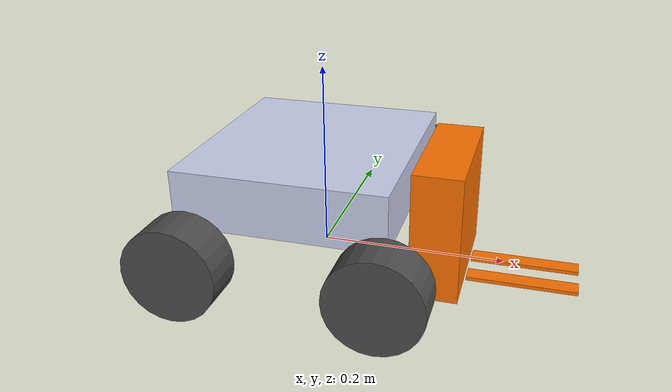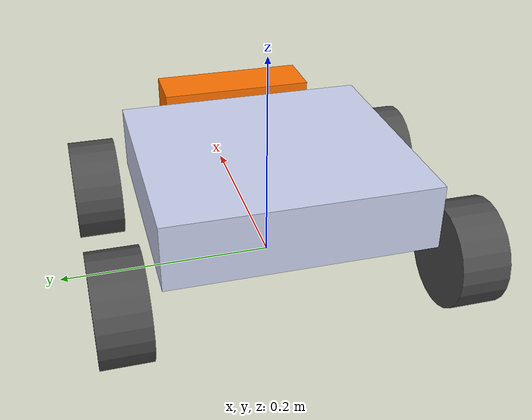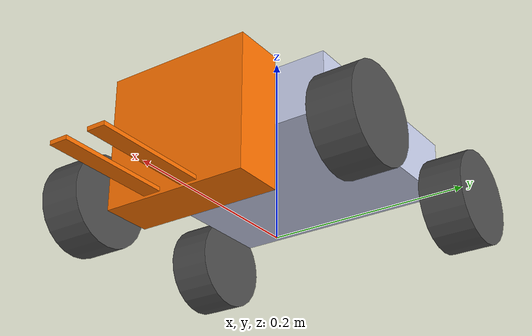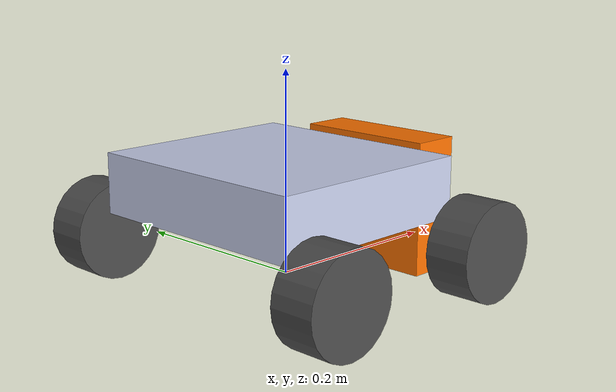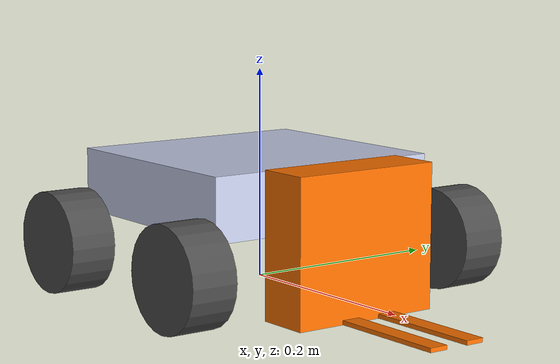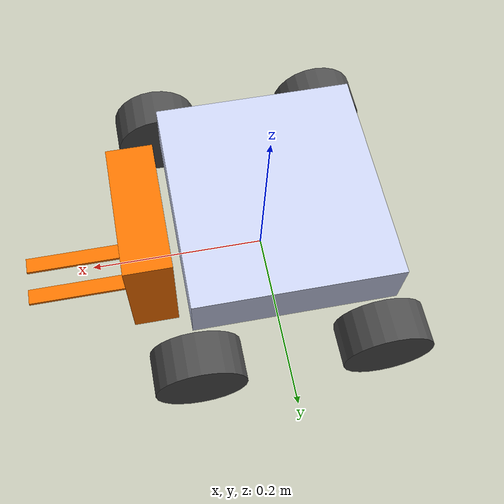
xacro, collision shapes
<?xml version="1.0" encoding="utf-8"?>
<robot name="robot0" xmlns:xacro="http://www.ros.org/wiki/xacro">

  <!-- Robot0 Top-Level Xacro Description         -->

  <!-- Common Properties, Constants & Materials -->
  <xacro:include filename="$(find robot0_description)/urdf/common_properties.xacro" />

  <!-- Base Footprint & Base Link Chassis -->
  <xacro:include filename="$(find robot0_description)/urdf/chassis.xacro" />

  <!-- Mecanum Wheels (Macro & 4 Wheels) -->
  <xacro:include filename="$(find robot0_description)/urdf/wheel.xacro" />

  <!-- Lift Arm Mechanism -->
  <xacro:include filename="$(find robot0_description)/urdf/lift.xacro" />

  <!-- Camera Sensor -->
  <xacro:include filename="$(find robot0_description)/urdf/camera.xacro" />

  <!-- Gazebo Fortress Simulation Plugins -->
  <xacro:include filename="$(find robot0_description)/urdf/robot0.gazebo.xacro" />

</robot>

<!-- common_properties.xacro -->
<robot xmlns:xacro="http://www.ros.org/wiki/xacro">

  <!-- Mathematical Constants                     -->
  <xacro:property name="PI" value="3.1415926535897931" />
  <xacro:property name="DEG_TO_RAD" value="${PI / 180.0}" />

  <!-- Standard Materials (RViz Visual Colors)    -->
  <material name="silver">
    <color rgba="0.792 0.820 0.933 1.0" />
  </material>

  <material name="dark_grey">
    <color rgba="0.2 0.2 0.2 1.0" />
  </material>

  <material name="wheel_grey">
    <color rgba="0.3 0.3 0.3 1.0" />
  </material>

  <material name="orange">
    <color rgba="1.0 0.45 0.0 1.0" />
  </material>

  <!-- Robot0 Geometric & Kinematic Properties    -->
  <!-- Wheelbase (Front-to-Rear) = 0.200m -> lx = 0.100m -->
  <xacro:property name="wheelbase_lx" value="0.100" />
  <!-- Track Width (Left-to-Right) = 0.3078m -> ly = 0.1539m -->
  <xacro:property name="track_ly" value="0.1539" />
  <xacro:property name="wheel_z_offset" value="-0.02385" />

  <!-- Wheel Common Properties                    -->
  <xacro:property name="wheel_radius" value="0.0487" />
  <xacro:property name="wheel_length" value="0.045" />
  <xacro:property name="wheel_mass" value="0.13187" />
  <xacro:property name="wheel_effort_limit" value="10.0" />
  <xacro:property name="wheel_velocity_limit" value="20.0" />

  <!-- Lift Mechanism Kinematics -->
  <xacro:property name="lift_joint_x" value="0.128" />
  <xacro:property name="lift_joint_y" value="0.000" />
  <xacro:property name="lift_joint_z" value="0.0435" />

  <!-- Camera Sensor Kinematics -->
  <xacro:property name="camera_joint_x" value="0.1695" />
  <xacro:property name="camera_joint_y" value="0.000" />
  <xacro:property name="camera_joint_z" value="0.272" />
  <xacro:property name="camera_pitch" value="0.70" />

</robot>

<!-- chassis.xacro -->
<robot xmlns:xacro="http://www.ros.org/wiki/xacro">

  <!-- Base Links & Footprint (ROS Standard REP-103) -->
  <link name="base_footprint" />

  <joint name="base_footprint_joint" type="fixed">
    <origin xyz="0 0 0.06" rpy="0 0 0" />
    <parent link="base_footprint" />
    <child link="base_link" />
  </joint>

  <link name="base_link">
    <inertial>
      <origin xyz="-0.00965 0.00000 0.01496" rpy="0 0 0" />
      <mass value="1.85" />
      <inertia ixx="0.010" ixy="0" ixz="0" iyy="0.005" iyz="0" izz="0.012" />
    </inertial>

    <!-- Main Chassis Base (Offset CAD origin to center base_link at 0,0,0) -->
    <visual>
      <origin xyz="-0.00928 0.00827 0.0" rpy="0 0 0" />
      <geometry>
        <mesh filename="package://robot0_description/meshes/base_link.stl" />
      </geometry>
      <material name="silver" />
    </visual>
    <!-- Collision Box sized to prevent overlap with front lift carriage -->
    <collision>
      <origin xyz="-0.010 0.000 0.030" rpy="0 0 0" />
      <geometry>
        <box size="0.22 0.24 0.06" />
      </geometry>
    </collision>

    <!-- Front-Right Motor Bracket -->
    <visual>
      <origin xyz="0.120 -0.123 -0.00377" rpy="-${PI/2} 0 ${PI/2}" />
      <geometry>
        <mesh filename="package://robot0_description/meshes/motor_bracket_fr.stl" />
      </geometry>
      <material name="silver" />
    </visual>

    <!-- Front-Left Motor Bracket -->
    <visual>
      <origin xyz="0.080 0.123 -0.00377" rpy="-${PI/2} 0 -${PI/2}" />
      <geometry>
        <mesh filename="package://robot0_description/meshes/motor_bracket_fl.stl" />
      </geometry>
      <material name="silver" />
    </visual>

    <!-- Rear-Right Motor Bracket -->
    <visual>
      <origin xyz="-0.080 -0.123 -0.00377" rpy="-${PI/2} 0 ${PI/2}" />
      <geometry>
        <mesh filename="package://robot0_description/meshes/motor_bracket_rr.stl" />
      </geometry>
      <material name="silver" />
    </visual>

    <!-- Rear-Left Motor Bracket -->
    <visual>
      <origin xyz="-0.125 0.123 -0.00377" rpy="-${PI/2} 0 -${PI/2}" />
      <geometry>
        <mesh filename="package://robot0_description/meshes/motor_bracket_rl.stl" />
      </geometry>
      <material name="silver" />
    </visual>

    <!-- Front-Right Motor -->
    <visual>
      <origin xyz="0.100 -0.120 -0.03077" rpy="${PI/2} 0 0" />
      <geometry>
        <mesh filename="package://robot0_description/meshes/motor_jgb37_520_right.stl" />
      </geometry>
      <material name="silver" />
    </visual>

    <!-- Front-Left Motor -->
    <visual>
      <origin xyz="0.100 0.120 -0.03077" rpy="-${PI/2} 0 -${PI}" />
      <geometry>
        <mesh filename="package://robot0_description/meshes/motor_jgb37_520_left.stl" />
      </geometry>
      <material name="silver" />
    </visual>

    <!-- Rear-Right Motor -->
    <visual>
      <origin xyz="-0.100 -0.120 -0.03077" rpy="${PI/2} 0 0" />
      <geometry>
        <mesh filename="package://robot0_description/meshes/motor_jgb37_520_right.stl" />
      </geometry>
      <material name="silver" />
    </visual>

    <!-- Rear-Left Motor -->
    <visual>
      <origin xyz="-0.100 0.120 -0.03077" rpy="-${PI/2} 0 -${PI}" />
      <geometry>
        <mesh filename="package://robot0_description/meshes/motor_jgb37_520_left.stl" />
      </geometry>
      <material name="silver" />
    </visual>

    <!-- Lift Base Column -->
    <visual>
      <origin xyz="0.128 0.000 0.00223" rpy="${PI/2} 0 -${PI/2}" />
      <geometry>
        <mesh filename="package://robot0_description/meshes/lift_base.stl" />
      </geometry>
      <material name="silver" />
    </visual>

    <!-- Lift Motor -->
    <visual>
      <origin xyz="0.1105 0.000 0.02923" rpy="-${PI/2} 0 -${PI/2}" />
      <geometry>
        <mesh filename="package://robot0_description/meshes/motor_jgb37_520_right.stl" />
      </geometry>
      <material name="silver" />
    </visual>

    <!-- Lift Guide Pipe 1 -->
    <visual>
      <origin xyz="0.128 -0.0575 0.00823" rpy="${PI/2} 0 -3.292375" />
      <geometry>
        <mesh filename="package://robot0_description/meshes/lift_pipe_1.stl" />
      </geometry>
      <material name="silver" />
    </visual>

    <!-- Lift Guide Pipe 2 -->
    <visual>
      <origin xyz="0.128 0.000 0.04601" rpy="${PI/2} 0 -2.990810" />
      <geometry>
        <mesh filename="package://robot0_description/meshes/lift_pipe_2.stl" />
      </geometry>
      <material name="silver" />
    </visual>

    <!-- Lift Top Cap -->
    <visual>
      <origin xyz="0.128 0.000 0.26823" rpy="${PI/2} 0 -${PI/2}" />
      <geometry>
        <mesh filename="package://robot0_description/meshes/lift_top_cap.stl" />
      </geometry>
      <material name="silver" />
    </visual>

    <!-- Lift Timing Belt -->
    <visual>
      <origin xyz="0.119 0.000 0.27823" rpy="${PI/2} ${PI/2} -${PI/2}" />
      <geometry>
        <mesh filename="package://robot0_description/meshes/lift_belt.stl" />
      </geometry>
      <material name="dark_grey" />
    </visual>

    <!-- Lift Top Pulley -->
    <visual>
      <origin xyz="0.119 0.000 0.27973" rpy="-${PI/2} -0.897414 ${PI/2}" />
      <geometry>
        <mesh filename="package://robot0_description/meshes/lift_pulley_20t.stl" />
      </geometry>
      <material name="silver" />
    </visual>
  </link>

</robot>

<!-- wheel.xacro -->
<robot xmlns:xacro="http://www.ros.org/wiki/xacro">

  <!-- Mecanum Wheel Macro Definition             -->
  <xacro:macro name="mecanum_wheel" params="prefix parent mesh_type mesh_rpy joint_xyz joint_rpy axis_xyz">
    <link name="${prefix}_link">
      <inertial>
        <origin xyz="1.85e-08 0.000719 3.74e-07" rpy="0 0 0" />
        <mass value="${wheel_mass}" />
        <inertia ixx="2.275e-05" ixy="7.45e-11" ixz="8.32e-11" iyy="2.864e-05" iyz="-3.97e-11" izz="2.275e-05" />
      </inertial>
      <visual>
        <origin xyz="0 0 0" rpy="${mesh_rpy}" />
        <geometry>
          <mesh filename="package://robot0_description/meshes/${mesh_type}.stl" />
        </geometry>
        <material name="wheel_grey" />
      </visual>
      <collision>
        <origin xyz="0 0 0" rpy="${PI/2} 0 0" />
        <geometry>
          <cylinder radius="${wheel_radius}" length="${wheel_length}" />
        </geometry>
      </collision>
    </link>

    <joint name="${prefix}_joint" type="continuous">
      <origin xyz="${joint_xyz}" rpy="${joint_rpy}" />
      <parent link="${parent}" />
      <child link="${prefix}_link" />
      <axis xyz="${axis_xyz}" />
      <limit effort="${wheel_effort_limit}" velocity="${wheel_velocity_limit}" />
      <dynamics damping="0.01" friction="0.01" />
    </joint>

    <gazebo reference="${prefix}_link">
      <mu1>0.0</mu1>
      <mu2>0.0</mu2>
      <material>Gazebo/DarkGrey</material>
    </gazebo>
  </xacro:macro>

  <!-- Wheel Instantiations                       -->

  <!-- Front-Right Wheel -->
  <xacro:mecanum_wheel
    prefix="wheel_fr"
    parent="base_link"
    mesh_type="wheel_right"
    mesh_rpy="${PI} 0 0"
    joint_xyz="${wheelbase_lx} -${track_ly} ${wheel_z_offset}"
    joint_rpy="-${PI/2} -${PI/2} -${PI/2}"
    axis_xyz="0 -1 0" />

  <!-- Front-Left Wheel -->
  <xacro:mecanum_wheel
    prefix="wheel_fl"
    parent="base_link"
    mesh_type="wheel_left"
    mesh_rpy="0 0 0"
    joint_xyz="${wheelbase_lx} ${track_ly} ${wheel_z_offset}"
    joint_rpy="${PI/2} -${PI/2} -${PI/2}"
    axis_xyz="0 1 0" />

  <!-- Rear-Right Wheel -->
  <xacro:mecanum_wheel
    prefix="wheel_rr"
    parent="base_link"
    mesh_type="wheel_left"
    mesh_rpy="${PI} 0 ${PI}"
    joint_xyz="-${wheelbase_lx} -${track_ly} ${wheel_z_offset}"
    joint_rpy="-${PI/2} -${PI/2} -${PI/2}"
    axis_xyz="0 -1 0" />

  <!-- Rear-Left Wheel -->
  <xacro:mecanum_wheel
    prefix="wheel_rl"
    parent="base_link"
    mesh_type="wheel_right"
    mesh_rpy="0 0 ${PI}"
    joint_xyz="-${wheelbase_lx} ${track_ly} ${wheel_z_offset}"
    joint_rpy="${PI/2} -${PI/2} -${PI/2}"
    axis_xyz="0 1 0" />

</robot>

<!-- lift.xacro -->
<robot xmlns:xacro="http://www.ros.org/wiki/xacro">

  <!-- Lift Mechanism (Prismatic Movable Arm)     -->

  <link name="lift_arm_link">
    <inertial>
      <origin xyz="-0.01806 0.00000 -0.02565" rpy="${PI/2} 0 -${PI/2}" />
      <mass value="0.16181" />
      <inertia ixx="0.00038242" ixy="-1.38e-07" ixz="-1.26e-07" iyy="0.00045993" iyz="-0.00018047" izz="0.00040656" />
    </inertial>

    <visual>
      <origin xyz="0 0 0" rpy="${PI/2} 0 -${PI/2}" />
      <geometry>
        <mesh filename="package://robot0_description/meshes/lift_arm.stl" />
      </geometry>
      <material name="orange" />
    </visual>

    <!-- Back Vertical Slider Carriage Collision -->
    <collision name="lift_arm_slider_collision">
      <origin xyz="0.008 0.000 -0.048" rpy="0 0 0" />
      <geometry>
        <box size="0.051 0.149 0.136" />
      </geometry>
    </collision>

    <!-- Left Fork Blade -->
    <collision name="lift_arm_fork_l_collision">
      <origin xyz="0.0935 0.0203 -0.1130" rpy="0 0 0" />
      <geometry>
        <box size="0.115 0.018 0.004" />
      </geometry>
      <surface>
        <friction>
          <ode>
            <mu>1.5</mu>
            <mu2>1.5</mu2>
          </ode>
        </friction>
      </surface>
    </collision>

    <!-- Right Fork Blade -->
    <collision name="lift_arm_fork_r_collision">
      <origin xyz="0.0935 -0.0203 -0.1130" rpy="0 0 0" />
      <geometry>
        <box size="0.115 0.018 0.004" />
      </geometry>
      <surface>
        <friction>
          <ode>
            <mu>1.5</mu>
            <mu2>1.5</mu2>
          </ode>
        </friction>
      </surface>
    </collision>
  </link>

  <!-- Prismatic Joint: Moves along Z axis (UP), Centered on Y=0 -->
  <joint name="lift_arm_joint" type="prismatic">
    <origin xyz="${lift_joint_x} ${lift_joint_y} ${lift_joint_z}" rpy="0 0 0" />
    <parent link="base_link" />
    <child link="lift_arm_link" />
    <axis xyz="0 0 1" />
    <limit lower="0.0" upper="0.20" effort="100.0" velocity="0.2" />
    <dynamics damping="0.5" friction="0.1" />
  </joint>

</robot>

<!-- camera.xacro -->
<robot xmlns:xacro="http://www.ros.org/wiki/xacro">

  <!-- Camera Sensor -->
  <link name="camera_link">
    <inertial>
      <origin xyz="0 0 0" rpy="0 0 0" />
      <mass value="0.001" />
      <inertia ixx="1e-6" ixy="0" ixz="0" iyy="1e-6" iyz="0" izz="1e-6" />
    </inertial>
  </link>

  <!-- Joint from base_link to camera_link: forward in +X, tilted down by camera_pitch -->
  <joint name="camera_joint" type="fixed">
    <origin xyz="${camera_joint_x} ${camera_joint_y} ${camera_joint_z}" rpy="0 ${camera_pitch} 0" />
    <parent link="base_link" />
    <child link="camera_link" />
  </joint>

  <!-- Optical Frame (ROS Standard: Z forward, X right, Y down) -->
  <link name="camera_optical_link" />

  <joint name="camera_optical_joint" type="fixed">
    <origin xyz="0 0 0" rpy="-${PI/2} 0 -${PI/2}" />
    <parent link="camera_link" />
    <child link="camera_optical_link" />
  </joint>

  <!-- Gazebo Camera Sensor Plugin -->
  <gazebo reference="camera_link">
    <sensor name="camera" type="camera">
      <!-- Wide-angle FOV: ~90 deg (1.5708 rad) -->
      <camera>
        <horizontal_fov>1.5708</horizontal_fov>
        <image>
          <width>640</width>
          <height>480</height>
          <format>R8G8B8</format>
        </image>
        <clip>
          <near>0.05</near>
          <far>20.0</far>
        </clip>
        <optical_frame_id>camera_optical_link</optical_frame_id>
      </camera>
      <always_on>1</always_on>
      <update_rate>15</update_rate>
      <visualize>true</visualize>
      <topic>/camera/image_raw</topic>
    </sensor>
    <material>Gazebo/Blue</material>
  </gazebo>

</robot>
